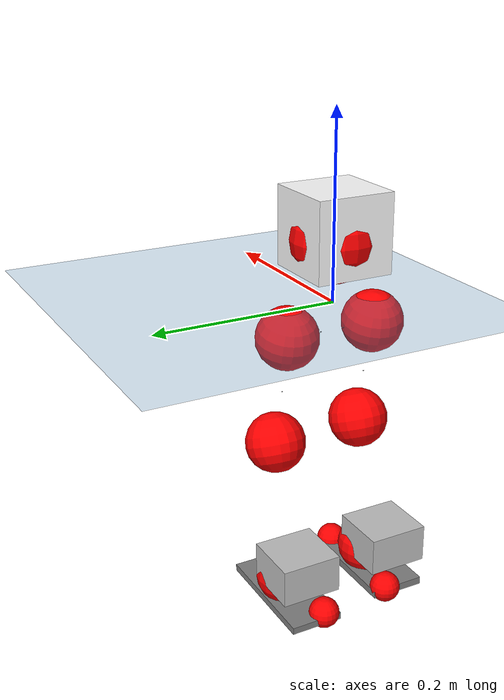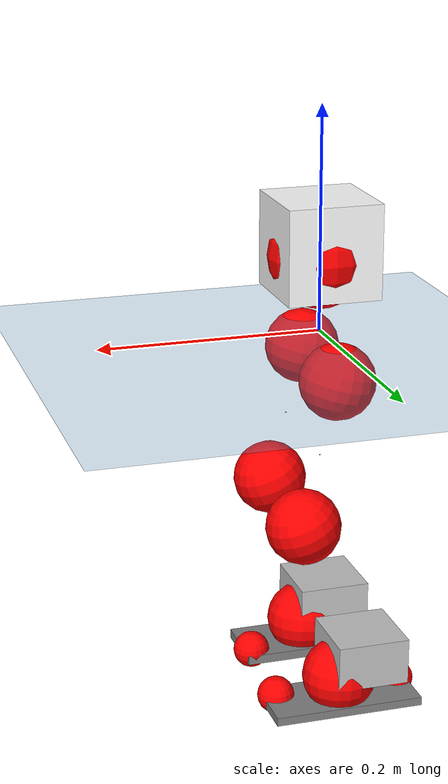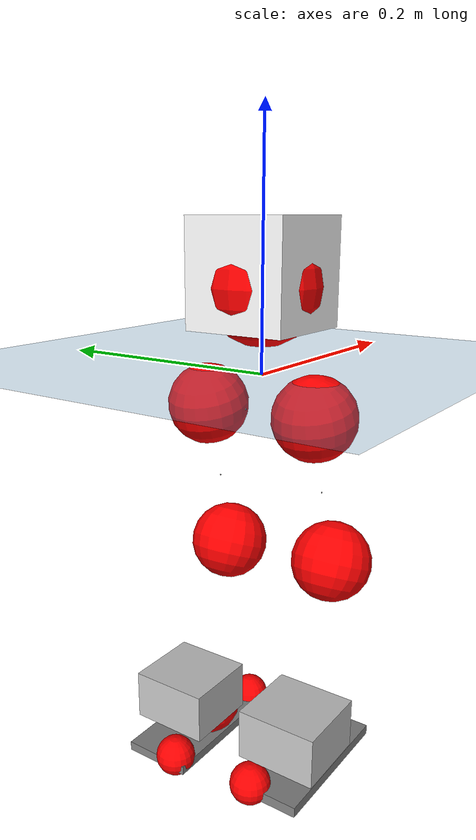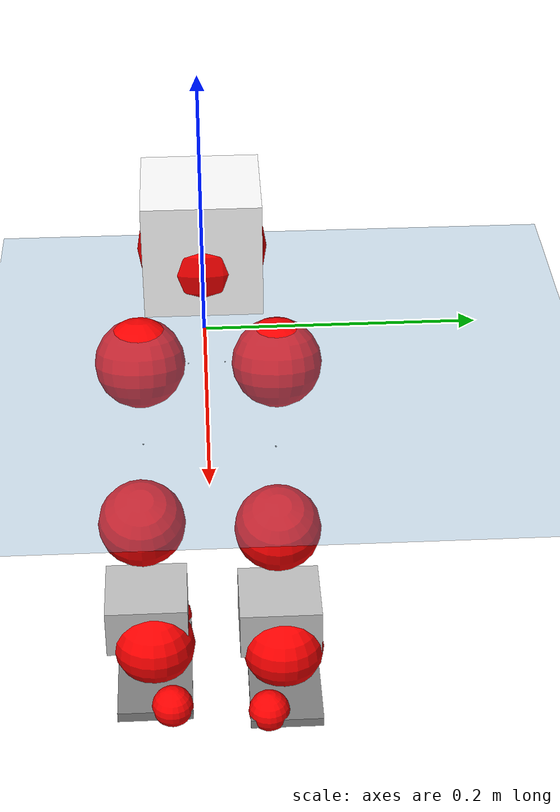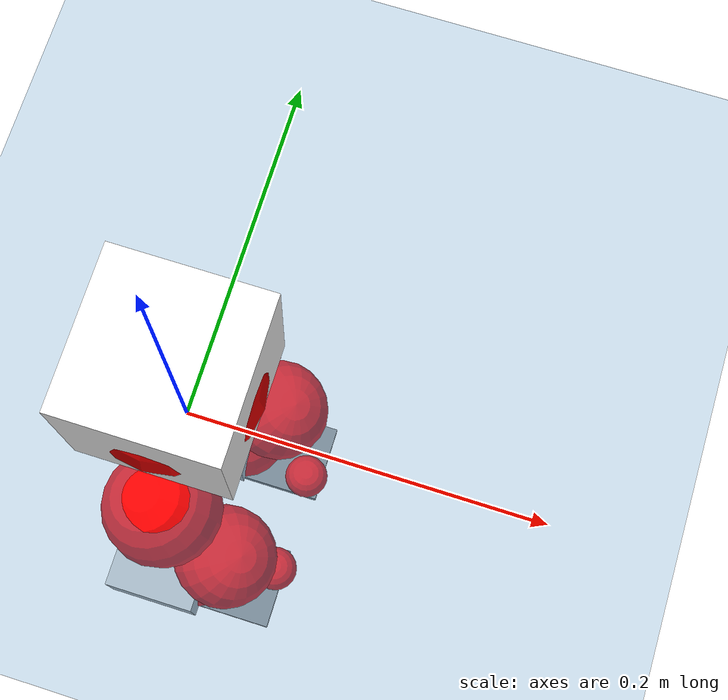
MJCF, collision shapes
<mujoco model="pi_12dof_release_v1">
  <compiler angle="radian" assetdir="assets" balanceinertia="true" inertiafromgeom="false"/>

  <option timestep="0.005" density="1.2" viscosity="2e-05"/>

  <size nkey="1"/>

  <visual>
    <quality shadowsize="8192"/>
    <map shadowclip="0.5"/>
  </visual>

  <default>
    <default class="/">
      <joint armature="0.01" damping="0.01" frictionloss="0.01"/>
      <geom contype="0" conaffinity="0" group="1" solref="-1000 -80"/>
      <site size="0.01 0.005 0.005" group="5"/>
      <general forcelimited="true" biastype="affine" gainprm="20" biasprm="0 -20 -0.5"/>
      <default class="foot">
        <geom size="0.0845 0.036 0.005" type="box" condim="6" group="4" priority="1" friction="0.9 0.2 0.2" solimp="0.015 1 0.005"/>
      </default>
      <default class="reward_collision_sphere">
        <geom group="5" rgba="1 0 0 1"/>
      </default>
    </default>
  </default>

  <asset>
    <texture type="skybox" colorspace="auto" name="//unnamed_texture_0" builtin="gradient" rgb1="0.95 0.95 0.95" rgb2="0.95 0.95 0.95" width="100" height="600"/>
    <texture type="2d" colorspace="auto" name="texplane" builtin="checker" rgb1="0.345 0.575 0.748" rgb2="0.345 0.575 0.748" markrgb="1 1 1" width="512" height="512"/>
    <material name="MatPlane" class="/" texture="texplane" texuniform="true" texrepeat="2 2" specular="0.9"/>
    <mesh name="baselink_1" class="/" file="baselink_1.STL"/>
    <mesh name="r_hip_pitch_link" class="/" file="r_hip_pitch_link.STL"/>
    <mesh name="r_hip_roll_link" class="/" file="r_hip_roll_link.STL"/>
    <mesh name="r_thigh_link" class="/" file="r_thigh_link.STL"/>
    <mesh name="r_calf_link" class="/" file="r_calf_link.STL"/>
    <mesh name="r_ankle_pitch_link" class="/" file="r_ankle_pitch_link.STL"/>
    <mesh name="r_ankle_roll_link" class="/" file="r_ankle_roll_link.STL"/>
    <mesh name="l_hip_pitch_link" class="/" file="l_hip_pitch_link.STL"/>
    <mesh name="l_hip_roll_link" class="/" file="l_hip_roll_link.STL"/>
    <mesh name="l_thigh_link" class="/" file="l_thigh_link.STL"/>
    <mesh name="l_calf_link" class="/" file="l_calf_link.STL"/>
    <mesh name="l_ankle_pitch_link" class="/" file="l_ankle_pitch_link.STL"/>
    <mesh name="l_ankle_roll_link" class="/" file="l_ankle_roll_link.STL"/>
  </asset>

  <worldbody>
    <geom name="floor" class="/" size="100 100 0.125" type="plane" group="0" material="MatPlane"/>
    <light name="toplight_shadow" class="/" pos="0 0 5" dir="0.0990148 0.0990148 -0.990148" type="directional" ambient="0.04 0.04 0.04" diffuse="0.55 0.55 0.55" specular="0.12 0.12 0.12"/>
    <light name="toplight_fill" class="/" pos="0 0 5" dir="0.0990148 0.0990148 -0.990148" type="directional" castshadow="false" ambient="0.04 0.04 0.04" diffuse="0.3 0.3 0.3" specular="0.08 0.08 0.08"/>
    <body name="trunk" pos="0.000195724 -1.91242e-05 0.000567893" quat="1 -2.25963e-05 4.32486e-05 -6.3496e-05">
      <inertial pos="0.00289305 0.000682437 0.0379499" quat="0.695077 0.00768041 0.00894938 0.718838" mass="1.24084" diaginertia="0.0044466 0.00153607 0.00336451"/>
      <joint name="//unnamed_joint_0" type="free"/>
      <geom name="//unnamed_geom_1" class="/" type="mesh" density="0" rgba="1 1 1 1" mesh="baselink_1"/>
      <geom name="//unnamed_geom_2" class="/" size="0.0421014 0.0421014 0.0421014" pos="0 0 0.077068" type="box" rgba="1 1 1 1"/>
      <geom name="//unnamed_geom_3" class="reward_collision_sphere" size="0.0463116" pos="0 0 0.0674345"/>
      <site name="imu" class="/" pos="0.00590656 0.0131263 -0.00821761" size="0.00842028"/>
      <camera name="track" class="/" pos="0 -1.41248 0" quat="0.707107 0.707107 0 0" mode="trackcom"/>
      <camera name="ego_camera" class="/" pos="0.0642373 0 0.173403" quat="-0.5 -0.5 0.5 0.5"/>
      <body name="r_hip_pitch_link" pos="-0.000437778 -0.0127879 -0.0307185" quat="0.992194 -2.33549e-05 -0.124703 3.48216e-05">
        <inertial pos="0.000212905 -0.0386538 0.000136035" quat="-0.0177526 0.705021 -0.0281036 0.708407" mass="0.212976" diaginertia="4.95429e-05 1.62003e-05 6.67986e-05"/>
        <joint name="r_hip_pitch_joint" class="/" pos="0 0 0" axis="-0.00134056 -0.999979 -0.0063952" range="-1.71494 1.20765" armature="0.0083562" damping="0.00406682" frictionloss="0.00874542"/>
        <geom name="//unnamed_geom_4" class="/" type="mesh" density="0" rgba="0.75294 0.75294 0.75294 1" mesh="r_hip_pitch_link"/>
        <geom name="//unnamed_geom_5" class="/" size="0.000421014 0.000421014 0.000421014" type="box" rgba="0.75294 0.75294 0.75294 1"/>
        <body name="r_hip_roll_link" pos="6.56673e-06 -0.0359704 0.00167602" quat="1 -0.000583256 0.000136076 0.000364204">
          <inertial pos="-0.00266882 -0.000155387 -0.0615675" quat="0.705351 -0.0762535 -0.0940676 0.698439" mass="0.234144" diaginertia="0.000154914 4.83596e-05 0.000103484"/>
          <joint name="r_hip_roll_joint" class="/" pos="0 0 0" axis="-0.99995 -0.00173082 0.00986555" range="-0.10852 0.494672" armature="0.00877715" damping="0.00256833" frictionloss="0.00949601"/>
          <geom name="//unnamed_geom_6" class="/" type="mesh" density="0" rgba="0.75294 0.75294 0.75294 1" mesh="r_hip_roll_link"/>
          <geom name="//unnamed_geom_7" class="/" size="0.000421014 0.000421014 0.000421014" type="box" rgba="0.75294 0.75294 0.75294 1"/>
          <geom name="//unnamed_geom_8" class="reward_collision_sphere" size="0.0336811"/>
          <body name="r_thigh_link" pos="-0.00152565 -0.000359246 -0.0651268" quat="1 -0.000677722 4.44024e-05 0.000441916">
            <inertial pos="0.00179429 0.000938765 -0.0443712" quat="0.736756 0.676142 9.36636e-05 0.00464751" mass="0.0678211" diaginertia="5.8066e-05 1.6781e-05 4.87148e-05"/>
            <joint name="r_thigh_joint" class="/" pos="0 0 0" axis="-0.000221089 -0.000103691 -1" stiffness="0.00786883" range="-0.358418 0.613818" armature="0.00878336" damping="0.0144824" frictionloss="0.00805361"/>
            <geom name="//unnamed_geom_9" class="/" type="mesh" density="0" rgba="0.75294 0.75294 0.75294 1" mesh="r_thigh_link"/>
            <geom name="//unnamed_geom_10" class="/" size="0.000421014 0.000421014 0.000421014" type="box" rgba="0.75294 0.75294 0.75294 1"/>
            <body name="r_calf_link" pos="-0.00204029 -0.00349272 -0.0649289" quat="0.947663 -3.05694e-05 0.319271 0.000433286">
              <inertial pos="-0.0034866 -0.000588383 -0.0669741" quat="0.999993 -0.000691259 0.00225638 0.00299183" mass="0.467285" diaginertia="0.00159493 0.000603524 0.000141337"/>
              <joint name="r_calf_joint" class="/" pos="0 0 0" axis="-0.00907682 -0.999913 -0.00959447" range="-1.64735 0.702416" armature="0.00835912" damping="0.000698642" frictionloss="0.00823997"/>
              <geom name="//unnamed_geom_11" class="/" type="mesh" density="0" rgba="0.75294 0.75294 0.75294 1" mesh="r_calf_link"/>
              <geom name="//unnamed_geom_12" class="/" size="0.000421014 0.000421014 0.000421014" type="box" rgba="0.75294 0.75294 0.75294 1"/>
              <geom name="//unnamed_geom_13" class="reward_collision_sphere" size="0.0336811"/>
              <body name="r_ankle_pitch_link" pos="-0.000905199 -0.00166627 -0.139788" quat="0.980154 0.00118926 -0.198231 0.000695799">
                <inertial pos="0.00120643 0.00251832 -0.00292465" quat="0.00799075 0.70179 0.00277694 0.712334" mass="0.106884" diaginertia="0.000139507 3.81249e-05 0.000102455"/>
                <joint name="r_ankle_pitch_joint" class="/" pos="0 0 0" axis="-0.0109307 -0.999931 0.00420305" range="-1.35301 0.508001" armature="0.00728918" damping="0.000828129" frictionloss="0.00871669"/>
                <geom name="//unnamed_geom_14" class="/" type="mesh" density="0" rgba="0.75294 0.75294 0.75294 1" mesh="r_ankle_pitch_link"/>
                <geom name="//unnamed_geom_15" class="/" size="0.0328391 0.0336811 0.0210507" type="box" rgba="0.75294 0.75294 0.75294 1"/>
                <body name="r_ankle_roll_link" pos="0.0655783 0.00542068 0.00070435" quat="1 -0.000584906 2.46049e-05 -0.000424655">
                  <inertial pos="-0.0233208 -0.000256829 -0.012645" quat="0.556144 0.43269 0.432789 0.562296" mass="0.305667" diaginertia="0.000524777 0.000182324 0.000226933"/>
                  <joint name="r_ankle_roll_joint" class="/" pos="0 0 0" axis="-0.999988 -0.00200517 0.00444947" stiffness="0.00913194" range="-0.125965 0.204462" armature="0.00804239" damping="0" frictionloss="0.0083883"/>
                  <geom name="//unnamed_geom_16" class="/" type="mesh" density="0" rgba="0.75294 0.75294 0.75294 1" mesh="r_ankle_roll_link"/>
                  <geom name="//unnamed_geom_17" class="/" type="mesh" rgba="0.75294 0.75294 0.75294 1" mesh="r_ankle_roll_link"/>
                  <geom name="right_foot" class="foot" size="0.0639492 0.0303094 0.00424201" pos="-0.0436813 0 -0.0423874"/>
                  <geom name="//unnamed_geom_19" class="reward_collision_sphere" size="0.0336811" pos="-0.0428248 0 -0.019267"/>
                  <geom name="//unnamed_geom_20" class="reward_collision_sphere" size="0.0168406" pos="0.0128475 0.0141248 -0.038534"/>
                  <geom name="//unnamed_geom_21" class="reward_collision_sphere" size="0.0168406" pos="-0.10278 0.0141248 -0.038534"/>
                  <site name="right_foot" class="foot" pos="-0.0436813 0 -0.0423874" size="0.00842028"/>
                </body>
              </body>
            </body>
          </body>
        </body>
      </body>
      <body name="l_hip_pitch_link" pos="-0.00072324 0.0142905 -0.0305246" quat="0.992127 -0.000426434 -0.125231 0.000759103">
        <inertial pos="-0.00223099 0.0377274 0.000768972" quat="-0.0272372 0.705353 0.022342 0.707981" mass="0.22524" diaginertia="5.52075e-05 1.84642e-05 7.90723e-05"/>
        <joint name="l_hip_pitch_joint" class="/" pos="0 0 0" axis="0.0023881 0.999985 0.00496101" range="-1.23764 1.698" armature="0.00844147" damping="0" frictionloss="0.00957767"/>
        <geom name="//unnamed_geom_22" class="/" type="mesh" density="0" rgba="0.75294 0.75294 0.75294 1" mesh="l_hip_pitch_link"/>
        <geom name="//unnamed_geom_23" class="/" size="0.000421014 0.000421014 0.000421014" type="box" rgba="0.75294 0.75294 0.75294 1"/>
        <body name="l_hip_roll_link" pos="0.00180985 0.038662 -0.000778403" quat="1 -0.000521006 -0.000422328 -0.000582504">
          <inertial pos="-0.00255418 -0.0019419 -0.0577353" quat="0.699222 -0.075199 -0.0780815 0.706638" mass="0.230195" diaginertia="0.000150929 4.81381e-05 0.00010749"/>
          <joint name="l_hip_roll_joint" class="/" pos="0 0 0" axis="-0.999995 -0.000860776 0.00290763" range="-0.496882 0.0604667" armature="0.00766641" damping="0.0159713" frictionloss="0.00843987"/>
          <geom name="//unnamed_geom_24" class="/" type="mesh" density="0" rgba="0.75294 0.75294 0.75294 1" mesh="l_hip_roll_link"/>
          <geom name="//unnamed_geom_25" class="/" size="0.000421014 0.000421014 0.000421014" type="box" rgba="0.75294 0.75294 0.75294 1"/>
          <geom name="//unnamed_geom_26" class="reward_collision_sphere" size="0.0336811"/>
          <body name="l_thigh_link" pos="-0.00258228 -0.00170117 -0.0677172" quat="1 0.000435641 6.09663e-05 0.000652266">
            <inertial pos="0.000705531 0.000940255 -0.0451726" quat="0.676289 0.736634 0.00184769 -0.00077621" mass="0.0647868" diaginertia="5.64404e-05 1.56388e-05 4.84238e-05"/>
            <joint name="l_thigh_joint" class="/" pos="0 0 0" axis="0.00191265 0.00114866 -0.999998" range="-0.579245 0.28543" armature="0.00766822" damping="0" frictionloss="0.00805704"/>
            <geom name="//unnamed_geom_27" class="/" type="mesh" density="0" rgba="0.75294 0.75294 0.75294 1" mesh="l_thigh_link"/>
            <geom name="//unnamed_geom_28" class="/" size="0.000421014 0.000421014 0.000421014" type="box" rgba="0.75294 0.75294 0.75294 1"/>
            <body name="l_calf_link" pos="-0.0024921 0.000440899 -0.0676354" quat="0.947658 -0.000272737 0.319288 7.8404e-05">
              <inertial pos="-0.00143339 -0.000613962 -0.0653741" quat="0.999979 0.0036042 -0.00171047 0.0050944" mass="0.49142" diaginertia="0.00161032 0.000603473 0.000148706"/>
              <joint name="l_calf_joint" class="/" pos="0 0 0" axis="0.00227442 0.999883 -0.015122" range="-0.667659 1.65768" armature="0.00914571" damping="0" frictionloss="0.00943389"/>
              <geom name="//unnamed_geom_29" class="/" type="mesh" density="0" rgba="0.75294 0.75294 0.75294 1" mesh="l_calf_link"/>
              <geom name="//unnamed_geom_30" class="/" size="0.000421014 0.000421014 0.000421014" type="box" rgba="0.75294 0.75294 0.75294 1"/>
              <geom name="//unnamed_geom_31" class="reward_collision_sphere" size="0.0336811"/>
              <body name="l_ankle_pitch_link" pos="-0.00190023 0.00332293 -0.138924" quat="0.980121 6.91422e-05 -0.198399 0.000110134">
                <inertial pos="0.00722007 -0.00363953 -0.000570798" quat="0.00409222 0.701356 -0.00338932 0.712792" mass="0.103244" diaginertia="0.000139343 3.80546e-05 9.85401e-05"/>
                <joint name="l_ankle_pitch_joint" class="/" pos="0 0 0" axis="0.00122475 0.999998 -0.00148001" stiffness="0.0042337" range="-0.55518 1.28622" armature="0.0071259" damping="0.0146953" frictionloss="0.00775812"/>
                <geom name="//unnamed_geom_32" class="/" type="mesh" density="0" rgba="0.75294 0.75294 0.75294 1" mesh="l_ankle_pitch_link"/>
                <geom name="//unnamed_geom_33" class="/" size="0.0328391 0.0336811 0.0210507" type="box" rgba="0.75294 0.75294 0.75294 1"/>
                <body name="l_ankle_roll_link" pos="0.0643457 0.00195032 -0.00126094" quat="1 -0.000251493 -0.000296235 -0.000627843">
                  <inertial pos="-0.0196818 -0.0009713 -0.0127061" quat="0.558735 0.430587 0.434022 0.560387" mass="0.314652" diaginertia="0.000533089 0.000193409 0.000242183"/>
                  <joint name="l_ankle_roll_joint" class="/" pos="0 0 0" axis="-1 -6.2751e-05 0.000366309" range="-0.142389 0.179506" armature="0.008379" damping="0" frictionloss="0.00724563"/>
                  <geom name="//unnamed_geom_34" class="/" type="mesh" density="0" rgba="0.75294 0.75294 0.75294 1" mesh="l_ankle_roll_link"/>
                  <geom name="//unnamed_geom_35" class="/" type="mesh" rgba="0.75294 0.75294 0.75294 1" mesh="l_ankle_roll_link"/>
                  <geom name="left_foot" class="foot" size="0.0687096 0.0294413 0.00385419" pos="-0.0436813 0 -0.0423874"/>
                  <geom name="//unnamed_geom_37" class="reward_collision_sphere" size="0.0336811" pos="-0.0428248 0 -0.019267"/>
                  <geom name="//unnamed_geom_38" class="reward_collision_sphere" size="0.0168406" pos="0.0128475 -0.0141248 -0.038534"/>
                  <geom name="//unnamed_geom_39" class="reward_collision_sphere" size="0.0168406" pos="-0.10278 -0.0141248 -0.038534"/>
                  <site name="left_foot" class="foot" pos="-0.0436813 0 -0.0423874" size="0.00842028"/>
                </body>
              </body>
            </body>
          </body>
        </body>
      </body>
    </body>
  </worldbody>

  <contact>
    <pair class="/" geom1="floor" geom2="right_foot" name="//unnamed_contact_1"/>
    <pair class="/" geom1="floor" geom2="left_foot" name="//unnamed_contact_0"/>
  </contact>

  <actuator>
    <general name="r_hip_pitch_joint" class="/" joint="r_hip_pitch_joint" forcerange="-18.3245 18.3245" gainprm="17.452" biasprm="0 -17.452 -0.418142"/>
    <general name="r_hip_roll_joint" class="/" joint="r_hip_roll_joint" forcerange="-18.3828 18.3828" gainprm="17.452" biasprm="0 -17.452 -0.418142"/>
    <general name="r_thigh_joint" class="/" joint="r_thigh_joint" forcerange="-17.7119 17.7119" gainprm="17.452" biasprm="0 -17.452 -0.418142"/>
    <general name="r_calf_joint" class="/" joint="r_calf_joint" forcerange="-16.749 16.749" gainprm="17.452" biasprm="0 -17.452 -0.418142"/>
    <general name="r_ankle_pitch_joint" class="/" joint="r_ankle_pitch_joint" forcerange="-15.795 15.795" gainprm="17.452" biasprm="0 -17.452 -0.418142"/>
    <general name="r_ankle_roll_joint" class="/" joint="r_ankle_roll_joint" forcerange="-18.292 18.292" gainprm="17.452" biasprm="0 -17.452 -0.418142"/>
    <general name="l_hip_pitch_joint" class="/" joint="l_hip_pitch_joint" forcerange="-17.9143 17.9143" gainprm="17.452" biasprm="0 -17.452 -0.418142"/>
    <general name="l_hip_roll_joint" class="/" joint="l_hip_roll_joint" forcerange="-18.3929 18.3929" gainprm="17.452" biasprm="0 -17.452 -0.418142"/>
    <general name="l_thigh_joint" class="/" joint="l_thigh_joint" forcerange="-19.4425 19.4425" gainprm="17.452" biasprm="0 -17.452 -0.418142"/>
    <general name="l_calf_joint" class="/" joint="l_calf_joint" forcerange="-17.1792 17.1792" gainprm="17.452" biasprm="0 -17.452 -0.418142"/>
    <general name="l_ankle_pitch_joint" class="/" joint="l_ankle_pitch_joint" forcerange="-19.4511 19.4511" gainprm="17.452" biasprm="0 -17.452 -0.418142"/>
    <general name="l_ankle_roll_joint" class="/" joint="l_ankle_roll_joint" forcerange="-18.0209 18.0209" gainprm="17.452" biasprm="0 -17.452 -0.418142"/>
  </actuator>

  <sensor>
    <gyro site="imu" name="imu_angular_velocity"/>
    <velocimeter site="imu" name="imu_linear_velocity"/>
    <framelinvel objtype="site" objname="left_foot" name="left_foot_global_linear_velocity"/>
    <framelinvel objtype="site" objname="right_foot" name="right_foot_global_linear_velocity"/>
  </sensor>

  <keyframe>
    <key name="home" qpos="0 0 0.291 1 0 0 0 0.4 0 0 -0.8 0.4 0 -0.4 0 0 0.8 -0.4 0"/>
  </keyframe>
</mujoco>
